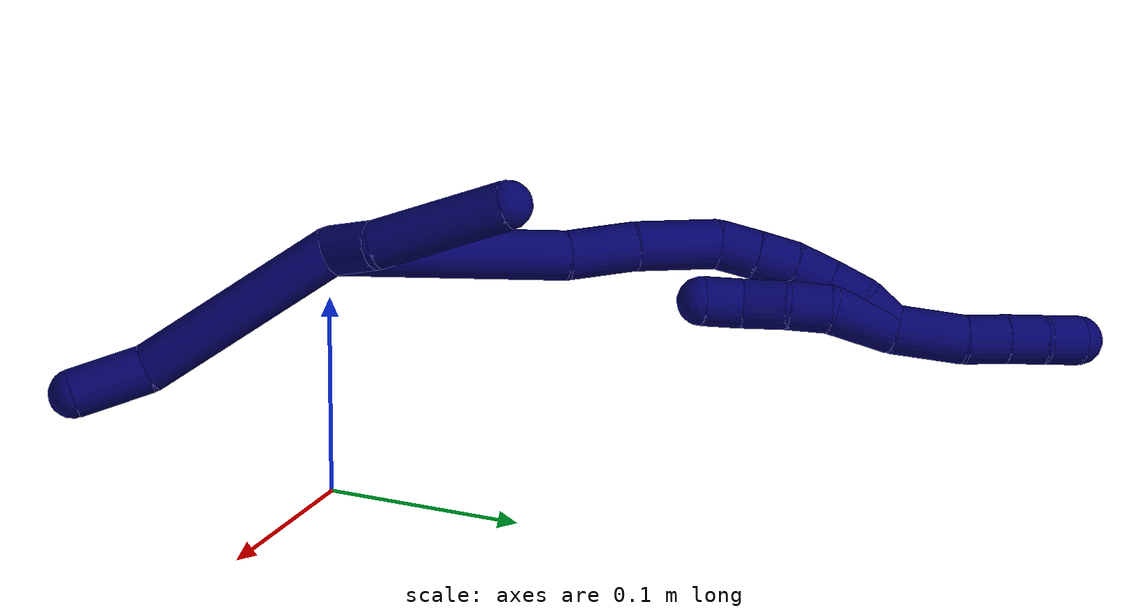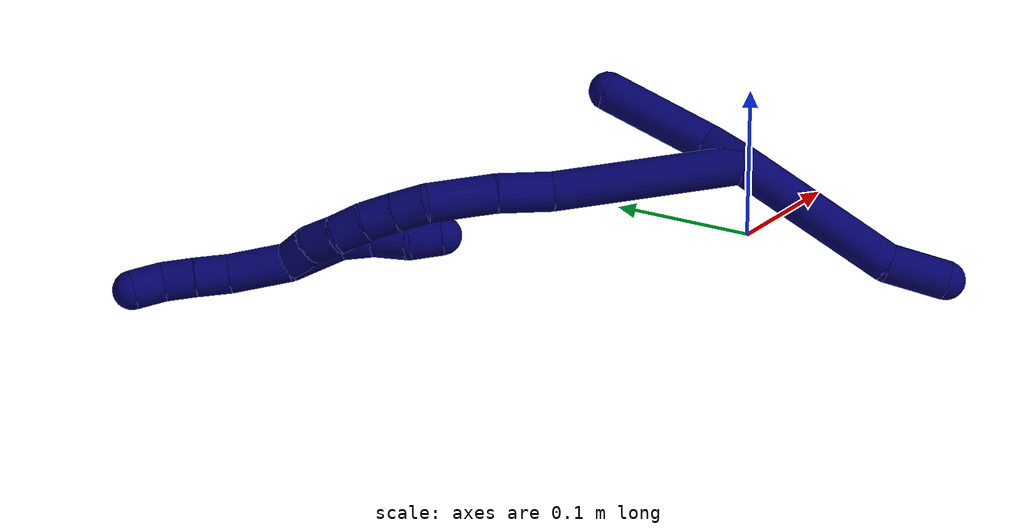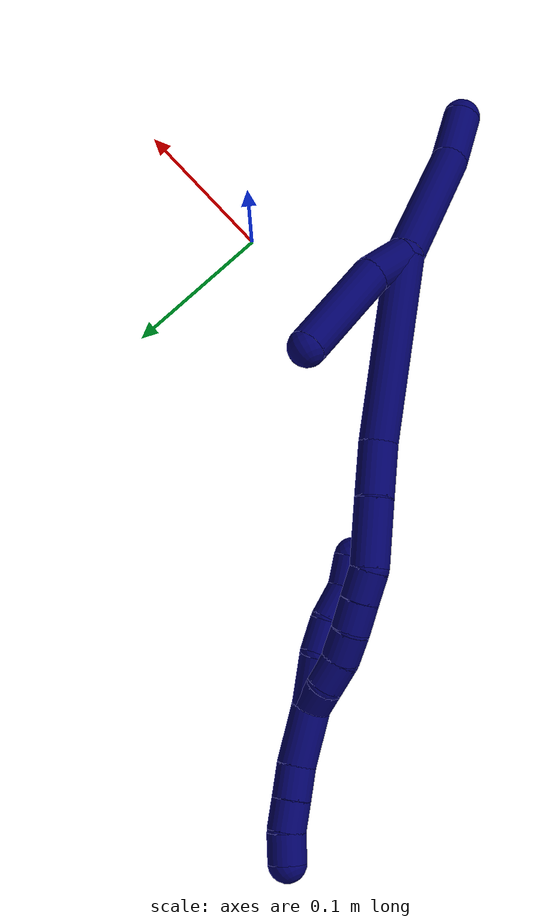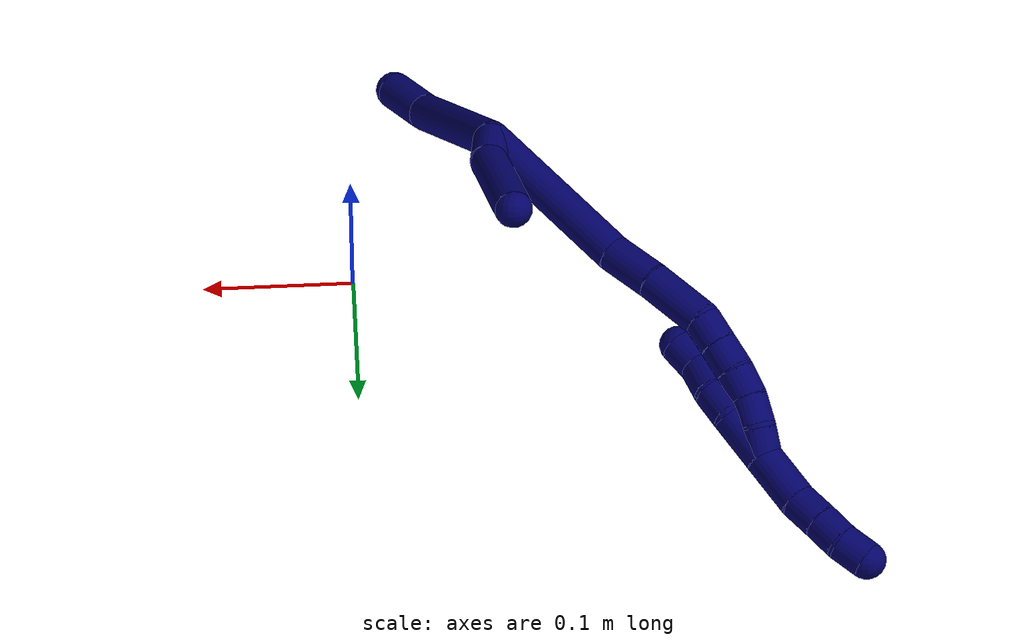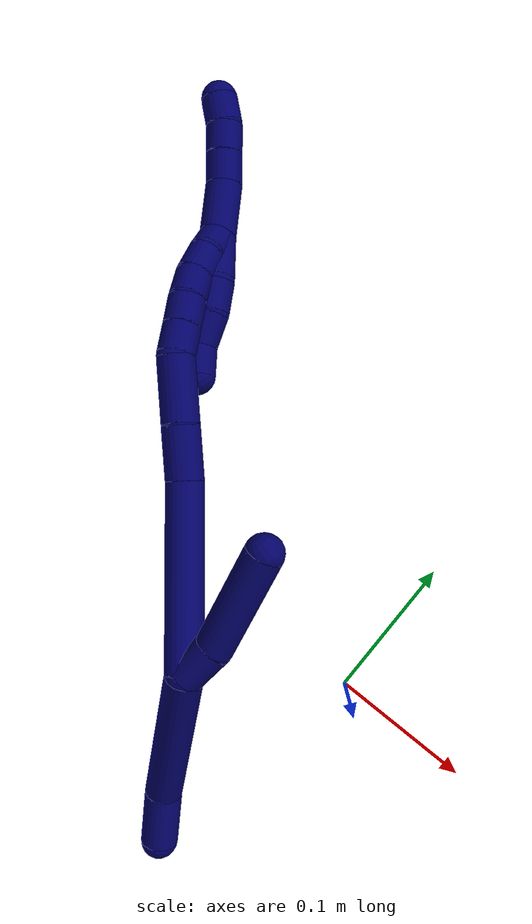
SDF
<sdf version="1.7">
 <world name="default">
  <model name="7">
   <static>0</static>
   <link name="7">
    <collision name="collision-cylinder-e_1_2_8">
     <pose>-0.025778 -0.034031 -0.035325 2.37486 -0.483871 -1.09816</pose>
     <geometry><cylinder><radius>0.0125</radius><length>0.110824</length></cylinder></geometry>
     <surface>
      <friction><ode><mu>1.16</mu><mu2>1.16</mu2><slip1>0</slip1><slip2>0</slip2></ode></friction>
      <contact><ode><kp>1e+06</kp><kd>1</kd><max_vel>0</max_vel><min_depth>0.001</min_depth></ode></contact>
     </surface>
    </collision>
    <visual name="visual-cylinder-e_1_2_8">
     <pose>-0.025778 -0.034031 -0.035325 2.37486 -0.483871 -1.09816</pose>
     <geometry><cylinder><radius>0.0125</radius><length>0.110824</length></cylinder></geometry>
     <material><ambient>0.003922 0 0.403922 1</ambient></material>
    </visual>
    <collision name="collision-cylinder-e_2_8_6">
     <pose>-0.055166 -0.080378 -0.085448 2.44743 -0.185325 -0.50293</pose>
     <geometry><cylinder><radius>0.0125</radius><length>0.039176</length></cylinder></geometry>
     <surface>
      <friction><ode><mu>1.16</mu><mu2>1.16</mu2><slip1>0</slip1><slip2>0</slip2></ode></friction>
      <contact><ode><kp>1e+06</kp><kd>1</kd><max_vel>0</max_vel><min_depth>0.001</min_depth></ode></contact>
     </surface>
    </collision>
    <visual name="visual-cylinder-e_2_8_6">
     <pose>-0.055166 -0.080378 -0.085448 2.44743 -0.185325 -0.50293</pose>
     <geometry><cylinder><radius>0.0125</radius><length>0.039176</length></cylinder></geometry>
     <material><ambient>0.003922 0 0.403922 1</ambient></material>
    </visual>
    <collision name="collision-cylinder-e_1_2_9">
     <pose>0.003371 0.013073 0.002983 -1.34647 0.246323 -0.196812</pose>
     <geometry><cylinder><radius>0.0125</radius><length>0.027652</length></cylinder></geometry>
     <surface>
      <friction><ode><mu>1.16</mu><mu2>1.16</mu2><slip1>0</slip1><slip2>0</slip2></ode></friction>
      <contact><ode><kp>1e+06</kp><kd>1</kd><max_vel>0</max_vel><min_depth>0.001</min_depth></ode></contact>
     </surface>
    </collision>
    <visual name="visual-cylinder-e_1_2_9">
     <pose>0.003371 0.013073 0.002983 -1.34647 0.246323 -0.196812</pose>
     <geometry><cylinder><radius>0.0125</radius><length>0.027652</length></cylinder></geometry>
     <material><ambient>0.003922 0 0.403922 1</ambient></material>
    </visual>
    <collision name="collision-cylinder-e_2_9_5">
     <pose>0.01726 0.056057 0.023379 -1.04361 0.294997 -0.170439</pose>
     <geometry><cylinder><radius>0.0125</radius><length>0.072348</length></cylinder></geometry>
     <surface>
      <friction><ode><mu>1.16</mu><mu2>1.16</mu2><slip1>0</slip1><slip2>0</slip2></ode></friction>
      <contact><ode><kp>1e+06</kp><kd>1</kd><max_vel>0</max_vel><min_depth>0.001</min_depth></ode></contact>
     </surface>
    </collision>
    <visual name="visual-cylinder-e_2_9_5">
     <pose>0.01726 0.056057 0.023379 -1.04361 0.294997 -0.170439</pose>
     <geometry><cylinder><radius>0.0125</radius><length>0.072348</length></cylinder></geometry>
     <material><ambient>0.003922 0 0.403922 1</ambient></material>
    </visual>
    <collision name="collision-cylinder-e_1_2_10">
     <pose>-0.013735 0.032986 0.048376 -0.598454 -0.230413 0.071366</pose>
     <geometry><cylinder><radius>0.0125</radius><length>0.120282</length></cylinder></geometry>
     <surface>
      <friction><ode><mu>1.16</mu><mu2>1.16</mu2><slip1>0</slip1><slip2>0</slip2></ode></friction>
      <contact><ode><kp>1e+06</kp><kd>1</kd><max_vel>0</max_vel><min_depth>0.001</min_depth></ode></contact>
     </surface>
    </collision>
    <visual name="visual-cylinder-e_1_2_10">
     <pose>-0.013735 0.032986 0.048376 -0.598454 -0.230413 0.071366</pose>
     <geometry><cylinder><radius>0.0125</radius><length>0.120282</length></cylinder></geometry>
     <material><ambient>0.003922 0 0.403922 1</ambient></material>
    </visual>
    <collision name="collision-cylinder-e_2_10_11">
     <pose>-0.029212 0.074867 0.112053 -0.526562 -0.09811 0.026464</pose>
     <geometry><cylinder><radius>0.0125</radius><length>0.035568</length></cylinder></geometry>
     <surface>
      <friction><ode><mu>1.16</mu><mu2>1.16</mu2><slip1>0</slip1><slip2>0</slip2></ode></friction>
      <contact><ode><kp>1e+06</kp><kd>1</kd><max_vel>0</max_vel><min_depth>0.001</min_depth></ode></contact>
     </surface>
    </collision>
    <visual name="visual-cylinder-e_2_10_11">
     <pose>-0.029212 0.074867 0.112053 -0.526562 -0.09811 0.026464</pose>
     <geometry><cylinder><radius>0.0125</radius><length>0.035568</length></cylinder></geometry>
     <material><ambient>0.003922 0 0.403922 1</ambient></material>
    </visual>
    <collision name="collision-cylinder-e_3_11_12">
     <pose>-0.035437 0.094447 0.14584 -0.5241 -0.206943 0.05569</pose>
     <geometry><cylinder><radius>0.0125</radius><length>0.043635</length></cylinder></geometry>
     <surface>
      <friction><ode><mu>1.16</mu><mu2>1.16</mu2><slip1>0</slip1><slip2>0</slip2></ode></friction>
      <contact><ode><kp>1e+06</kp><kd>1</kd><max_vel>0</max_vel><min_depth>0.001</min_depth></ode></contact>
     </surface>
    </collision>
    <visual name="visual-cylinder-e_3_11_12">
     <pose>-0.035437 0.094447 0.14584 -0.5241 -0.206943 0.05569</pose>
     <geometry><cylinder><radius>0.0125</radius><length>0.043635</length></cylinder></geometry>
     <material><ambient>0.003922 0 0.403922 1</ambient></material>
    </visual>
    <collision name="collision-cylinder-e_4_12_13">
     <pose>-0.044057 0.11177 0.170901 -0.790168 -0.416827 0.175927</pose>
     <geometry><cylinder><radius>0.0125</radius><length>0.020437</length></cylinder></geometry>
     <surface>
      <friction><ode><mu>1.16</mu><mu2>1.16</mu2><slip1>0</slip1><slip2>0</slip2></ode></friction>
      <contact><ode><kp>1e+06</kp><kd>1</kd><max_vel>0</max_vel><min_depth>0.001</min_depth></ode></contact>
     </surface>
    </collision>
    <visual name="visual-cylinder-e_4_12_13">
     <pose>-0.044057 0.11177 0.170901 -0.790168 -0.416827 0.175927</pose>
     <geometry><cylinder><radius>0.0125</radius><length>0.020437</length></cylinder></geometry>
     <material><ambient>0.003922 0 0.403922 1</ambient></material>
    </visual>
    <collision name="collision-cylinder-e_5_13_14">
     <pose>-0.052488 0.124748 0.18392 -0.77731 -0.443479 0.184112</pose>
     <geometry><cylinder><radius>0.0125</radius><length>0.020015</length></cylinder></geometry>
     <surface>
      <friction><ode><mu>1.16</mu><mu2>1.16</mu2><slip1>0</slip1><slip2>0</slip2></ode></friction>
      <contact><ode><kp>1e+06</kp><kd>1</kd><max_vel>0</max_vel><min_depth>0.001</min_depth></ode></contact>
     </surface>
    </collision>
    <visual name="visual-cylinder-e_5_13_14">
     <pose>-0.052488 0.124748 0.18392 -0.77731 -0.443479 0.184112</pose>
     <geometry><cylinder><radius>0.0125</radius><length>0.020015</length></cylinder></geometry>
     <material><ambient>0.003922 0 0.403922 1</ambient></material>
    </visual>
    <collision name="collision-cylinder-e_6_14_15">
     <pose>-0.062322 0.137409 0.195818 -0.858707 -0.585824 0.274421</pose>
     <geometry><cylinder><radius>0.0125</radius><length>0.020041</length></cylinder></geometry>
     <surface>
      <friction><ode><mu>1.16</mu><mu2>1.16</mu2><slip1>0</slip1><slip2>0</slip2></ode></friction>
      <contact><ode><kp>1e+06</kp><kd>1</kd><max_vel>0</max_vel><min_depth>0.001</min_depth></ode></contact>
     </surface>
    </collision>
    <visual name="visual-cylinder-e_6_14_15">
     <pose>-0.062322 0.137409 0.195818 -0.858707 -0.585824 0.274421</pose>
     <geometry><cylinder><radius>0.0125</radius><length>0.020041</length></cylinder></geometry>
     <material><ambient>0.003922 0 0.403922 1</ambient></material>
    </visual>
    <collision name="collision-cylinder-e_7_15_16">
     <pose>-0.073051 0.151258 0.205333 -1.07643 -0.54534 0.330836</pose>
     <geometry><cylinder><radius>0.0125</radius><length>0.020009</length></cylinder></geometry>
     <surface>
      <friction><ode><mu>1.16</mu><mu2>1.16</mu2><slip1>0</slip1><slip2>0</slip2></ode></friction>
      <contact><ode><kp>1e+06</kp><kd>1</kd><max_vel>0</max_vel><min_depth>0.001</min_depth></ode></contact>
     </surface>
    </collision>
    <visual name="visual-cylinder-e_7_15_16">
     <pose>-0.073051 0.151258 0.205333 -1.07643 -0.54534 0.330836</pose>
     <geometry><cylinder><radius>0.0125</radius><length>0.020009</length></cylinder></geometry>
     <material><ambient>0.003922 0 0.403922 1</ambient></material>
    </visual>
    <collision name="collision-cylinder-e_8_16_1">
     <pose>-0.085534 0.165036 0.2122 -1.14834 -0.816692 0.545788</pose>
     <geometry><cylinder><radius>0.0125</radius><length>0.020014</length></cylinder></geometry>
     <surface>
      <friction><ode><mu>1.16</mu><mu2>1.16</mu2><slip1>0</slip1><slip2>0</slip2></ode></friction>
      <contact><ode><kp>1e+06</kp><kd>1</kd><max_vel>0</max_vel><min_depth>0.001</min_depth></ode></contact>
     </surface>
    </collision>
    <visual name="visual-cylinder-e_8_16_1">
     <pose>-0.085534 0.165036 0.2122 -1.14834 -0.816692 0.545788</pose>
     <geometry><cylinder><radius>0.0125</radius><length>0.020014</length></cylinder></geometry>
     <material><ambient>0.003922 0 0.403922 1</ambient></material>
    </visual>
    <collision name="collision-cylinder-e_1_1_17">
     <pose>-0.084252 0.162317 0.202827 2.50699 0.515735 1.35327</pose>
     <geometry><cylinder><radius>0.0125</radius><length>0.034778</length></cylinder></geometry>
     <surface>
      <friction><ode><mu>1.16</mu><mu2>1.16</mu2><slip1>0</slip1><slip2>0</slip2></ode></friction>
      <contact><ode><kp>1e+06</kp><kd>1</kd><max_vel>0</max_vel><min_depth>0.001</min_depth></ode></contact>
     </surface>
    </collision>
    <visual name="visual-cylinder-e_1_1_17">
     <pose>-0.084252 0.162317 0.202827 2.50699 0.515735 1.35327</pose>
     <geometry><cylinder><radius>0.0125</radius><length>0.034778</length></cylinder></geometry>
     <material><ambient>0.003922 0 0.403922 1</ambient></material>
    </visual>
    <collision name="collision-cylinder-e_2_17_18">
     <pose>-0.073232 0.146199 0.183246 2.37332 0.23327 0.564258</pose>
     <geometry><cylinder><radius>0.0125</radius><length>0.02115</length></cylinder></geometry>
     <surface>
      <friction><ode><mu>1.16</mu><mu2>1.16</mu2><slip1>0</slip1><slip2>0</slip2></ode></friction>
      <contact><ode><kp>1e+06</kp><kd>1</kd><max_vel>0</max_vel><min_depth>0.001</min_depth></ode></contact>
     </surface>
    </collision>
    <visual name="visual-cylinder-e_2_17_18">
     <pose>-0.073232 0.146199 0.183246 2.37332 0.23327 0.564258</pose>
     <geometry><cylinder><radius>0.0125</radius><length>0.02115</length></cylinder></geometry>
     <material><ambient>0.003922 0 0.403922 1</ambient></material>
    </visual>
    <collision name="collision-cylinder-e_3_18_19">
     <pose>-0.069732 0.129643 0.169066 2.19541 0.090772 0.176995</pose>
     <geometry><cylinder><radius>0.0125</radius><length>0.023286</length></cylinder></geometry>
     <surface>
      <friction><ode><mu>1.16</mu><mu2>1.16</mu2><slip1>0</slip1><slip2>0</slip2></ode></friction>
      <contact><ode><kp>1e+06</kp><kd>1</kd><max_vel>0</max_vel><min_depth>0.001</min_depth></ode></contact>
     </surface>
    </collision>
    <visual name="visual-cylinder-e_3_18_19">
     <pose>-0.069732 0.129643 0.169066 2.19541 0.090772 0.176995</pose>
     <geometry><cylinder><radius>0.0125</radius><length>0.023286</length></cylinder></geometry>
     <material><ambient>0.003922 0 0.403922 1</ambient></material>
    </visual>
    <collision name="collision-cylinder-e_4_19_4">
     <pose>-0.066097 0.114057 0.154338 2.48063 0.250808 0.704308</pose>
     <geometry><cylinder><radius>0.0125</radius><length>0.020785</length></cylinder></geometry>
     <surface>
      <friction><ode><mu>1.16</mu><mu2>1.16</mu2><slip1>0</slip1><slip2>0</slip2></ode></friction>
      <contact><ode><kp>1e+06</kp><kd>1</kd><max_vel>0</max_vel><min_depth>0.001</min_depth></ode></contact>
     </surface>
    </collision>
    <visual name="visual-cylinder-e_4_19_4">
     <pose>-0.066097 0.114057 0.154338 2.48063 0.250808 0.704308</pose>
     <geometry><cylinder><radius>0.0125</radius><length>0.020785</length></cylinder></geometry>
     <material><ambient>0.003922 0 0.403922 1</ambient></material>
    </visual>
    <collision name="collision-cylinder-e_1_1_20">
     <pose>-0.098748 0.183185 0.228628 -0.718136 -0.316326 0.119587</pose>
     <geometry><cylinder><radius>0.0125</radius><length>0.038061</length></cylinder></geometry>
     <surface>
      <friction><ode><mu>1.16</mu><mu2>1.16</mu2><slip1>0</slip1><slip2>0</slip2></ode></friction>
      <contact><ode><kp>1e+06</kp><kd>1</kd><max_vel>0</max_vel><min_depth>0.001</min_depth></ode></contact>
     </surface>
    </collision>
    <visual name="visual-cylinder-e_1_1_20">
     <pose>-0.098748 0.183185 0.228628 -0.718136 -0.316326 0.119587</pose>
     <geometry><cylinder><radius>0.0125</radius><length>0.038061</length></cylinder></geometry>
     <material><ambient>0.003922 0 0.403922 1</ambient></material>
    </visual>
    <collision name="collision-cylinder-e_2_20_21">
     <pose>-0.106761 0.201157 0.251094 -0.601419 -0.192655 0.059913</pose>
     <geometry><cylinder><radius>0.0125</radius><length>0.021863</length></cylinder></geometry>
     <surface>
      <friction><ode><mu>1.16</mu><mu2>1.16</mu2><slip1>0</slip1><slip2>0</slip2></ode></friction>
      <contact><ode><kp>1e+06</kp><kd>1</kd><max_vel>0</max_vel><min_depth>0.001</min_depth></ode></contact>
     </surface>
    </collision>
    <visual name="visual-cylinder-e_2_20_21">
     <pose>-0.106761 0.201157 0.251094 -0.601419 -0.192655 0.059913</pose>
     <geometry><cylinder><radius>0.0125</radius><length>0.021863</length></cylinder></geometry>
     <material><ambient>0.003922 0 0.403922 1</ambient></material>
    </visual>
    <collision name="collision-cylinder-e_3_21_22">
     <pose>-0.111115 0.212858 0.267937 -0.613578 -0.227245 0.072269</pose>
     <geometry><cylinder><radius>0.0125</radius><length>0.020075</length></cylinder></geometry>
     <surface>
      <friction><ode><mu>1.16</mu><mu2>1.16</mu2><slip1>0</slip1><slip2>0</slip2></ode></friction>
      <contact><ode><kp>1e+06</kp><kd>1</kd><max_vel>0</max_vel><min_depth>0.001</min_depth></ode></contact>
     </surface>
    </collision>
    <visual name="visual-cylinder-e_3_21_22">
     <pose>-0.111115 0.212858 0.267937 -0.613578 -0.227245 0.072269</pose>
     <geometry><cylinder><radius>0.0125</radius><length>0.020075</length></cylinder></geometry>
     <material><ambient>0.003922 0 0.403922 1</ambient></material>
    </visual>
    <collision name="collision-cylinder-e_4_22_3">
     <pose>-0.116295 0.222378 0.284671 -0.418716 -0.296149 0.063366</pose>
     <geometry><cylinder><radius>0.0125</radius><length>0.020002</length></cylinder></geometry>
     <surface>
      <friction><ode><mu>1.16</mu><mu2>1.16</mu2><slip1>0</slip1><slip2>0</slip2></ode></friction>
      <contact><ode><kp>1e+06</kp><kd>1</kd><max_vel>0</max_vel><min_depth>0.001</min_depth></ode></contact>
     </surface>
    </collision>
    <visual name="visual-cylinder-e_4_22_3">
     <pose>-0.116295 0.222378 0.284671 -0.418716 -0.296149 0.063366</pose>
     <geometry><cylinder><radius>0.0125</radius><length>0.020002</length></cylinder></geometry>
     <material><ambient>0.003922 0 0.403922 1</ambient></material>
    </visual>
    <collision name="collision-sphere-3">
     <pose>-0.119214 0.226267 0.29341 0 -0 0</pose>
     <geometry><sphere><radius>0.0125</radius></sphere></geometry>
     <surface>
      <friction><ode><mu>1.16</mu><mu2>1.16</mu2><slip1>0</slip1><slip2>0</slip2></ode></friction>
      <contact><ode><kp>1e+06</kp><kd>1</kd><max_vel>0</max_vel><min_depth>0.001</min_depth></ode></contact>
     </surface>
    </collision>
    <visual name="visual-sphere-3">
     <pose>-0.119214 0.226267 0.29341 0 -0 0</pose>
     <geometry><sphere><radius>0.0125</radius></sphere></geometry>
     <material><ambient>0.003922 0 0.403922 1</ambient></material>
    </visual>
    <collision name="collision-sphere-22">
     <pose>-0.113377 0.218489 0.275932 0 -0 0</pose>
     <geometry><sphere><radius>0.0125</radius></sphere></geometry>
     <surface>
      <friction><ode><mu>1.16</mu><mu2>1.16</mu2><slip1>0</slip1><slip2>0</slip2></ode></friction>
      <contact><ode><kp>1e+06</kp><kd>1</kd><max_vel>0</max_vel><min_depth>0.001</min_depth></ode></contact>
     </surface>
    </collision>
    <visual name="visual-sphere-22">
     <pose>-0.113377 0.218489 0.275932 0 -0 0</pose>
     <geometry><sphere><radius>0.0125</radius></sphere></geometry>
     <material><ambient>0.003922 0 0.403922 1</ambient></material>
    </visual>
    <collision name="collision-sphere-21">
     <pose>-0.108854 0.207227 0.259941 0 -0 0</pose>
     <geometry><sphere><radius>0.0125</radius></sphere></geometry>
     <surface>
      <friction><ode><mu>1.16</mu><mu2>1.16</mu2><slip1>0</slip1><slip2>0</slip2></ode></friction>
      <contact><ode><kp>1e+06</kp><kd>1</kd><max_vel>0</max_vel><min_depth>0.001</min_depth></ode></contact>
     </surface>
    </collision>
    <visual name="visual-sphere-21">
     <pose>-0.108854 0.207227 0.259941 0 -0 0</pose>
     <geometry><sphere><radius>0.0125</radius></sphere></geometry>
     <material><ambient>0.003922 0 0.403922 1</ambient></material>
    </visual>
    <collision name="collision-sphere-20">
     <pose>-0.104668 0.195086 0.242248 0 -0 0</pose>
     <geometry><sphere><radius>0.0125</radius></sphere></geometry>
     <surface>
      <friction><ode><mu>1.16</mu><mu2>1.16</mu2><slip1>0</slip1><slip2>0</slip2></ode></friction>
      <contact><ode><kp>1e+06</kp><kd>1</kd><max_vel>0</max_vel><min_depth>0.001</min_depth></ode></contact>
     </surface>
    </collision>
    <visual name="visual-sphere-20">
     <pose>-0.104668 0.195086 0.242248 0 -0 0</pose>
     <geometry><sphere><radius>0.0125</radius></sphere></geometry>
     <material><ambient>0.003922 0 0.403922 1</ambient></material>
    </visual>
    <collision name="collision-sphere-4">
     <pose>-0.063518 0.107877 0.146391 0 -0 0</pose>
     <geometry><sphere><radius>0.0125</radius></sphere></geometry>
     <surface>
      <friction><ode><mu>1.16</mu><mu2>1.16</mu2><slip1>0</slip1><slip2>0</slip2></ode></friction>
      <contact><ode><kp>1e+06</kp><kd>1</kd><max_vel>0</max_vel><min_depth>0.001</min_depth></ode></contact>
     </surface>
    </collision>
    <visual name="visual-sphere-4">
     <pose>-0.063518 0.107877 0.146391 0 -0 0</pose>
     <geometry><sphere><radius>0.0125</radius></sphere></geometry>
     <material><ambient>0.003922 0 0.403922 1</ambient></material>
    </visual>
    <collision name="collision-sphere-10">
     <pose>-0.02747 0.065972 0.096752 0 -0 0</pose>
     <geometry><sphere><radius>0.0125</radius></sphere></geometry>
     <surface>
      <friction><ode><mu>1.16</mu><mu2>1.16</mu2><slip1>0</slip1><slip2>0</slip2></ode></friction>
      <contact><ode><kp>1e+06</kp><kd>1</kd><max_vel>0</max_vel><min_depth>0.001</min_depth></ode></contact>
     </surface>
    </collision>
    <visual name="visual-sphere-10">
     <pose>-0.02747 0.065972 0.096752 0 -0 0</pose>
     <geometry><sphere><radius>0.0125</radius></sphere></geometry>
     <material><ambient>0.003922 0 0.403922 1</ambient></material>
    </visual>
    <collision name="collision-sphere-5">
     <pose>0.027777 0.08597 0.040792 0 -0 0</pose>
     <geometry><sphere><radius>0.0125</radius></sphere></geometry>
     <surface>
      <friction><ode><mu>1.16</mu><mu2>1.16</mu2><slip1>0</slip1><slip2>0</slip2></ode></friction>
      <contact><ode><kp>1e+06</kp><kd>1</kd><max_vel>0</max_vel><min_depth>0.001</min_depth></ode></contact>
     </surface>
    </collision>
    <visual name="visual-sphere-5">
     <pose>0.027777 0.08597 0.040792 0 -0 0</pose>
     <geometry><sphere><radius>0.0125</radius></sphere></geometry>
     <material><ambient>0.003922 0 0.403922 1</ambient></material>
    </visual>
    <collision name="collision-sphere-6">
     <pose>-0.058775 -0.092695 -0.100245 0 -0 0</pose>
     <geometry><sphere><radius>0.0125</radius></sphere></geometry>
     <surface>
      <friction><ode><mu>1.16</mu><mu2>1.16</mu2><slip1>0</slip1><slip2>0</slip2></ode></friction>
      <contact><ode><kp>1e+06</kp><kd>1</kd><max_vel>0</max_vel><min_depth>0.001</min_depth></ode></contact>
     </surface>
    </collision>
    <visual name="visual-sphere-6">
     <pose>-0.058775 -0.092695 -0.100245 0 -0 0</pose>
     <geometry><sphere><radius>0.0125</radius></sphere></geometry>
     <material><ambient>0.003922 0 0.403922 1</ambient></material>
    </visual>
    <collision name="collision-sphere-9">
     <pose>0.006743 0.026145 0.005965 0 -0 0</pose>
     <geometry><sphere><radius>0.0125</radius></sphere></geometry>
     <surface>
      <friction><ode><mu>1.16</mu><mu2>1.16</mu2><slip1>0</slip1><slip2>0</slip2></ode></friction>
      <contact><ode><kp>1e+06</kp><kd>1</kd><max_vel>0</max_vel><min_depth>0.001</min_depth></ode></contact>
     </surface>
    </collision>
    <visual name="visual-sphere-9">
     <pose>0.006743 0.026145 0.005965 0 -0 0</pose>
     <geometry><sphere><radius>0.0125</radius></sphere></geometry>
     <material><ambient>0.003922 0 0.403922 1</ambient></material>
    </visual>
    <collision name="collision-sphere-2">
     <geometry><sphere><radius>0.0125</radius></sphere></geometry>
     <surface>
      <friction><ode><mu>1.16</mu><mu2>1.16</mu2><slip1>0</slip1><slip2>0</slip2></ode></friction>
      <contact><ode><kp>1e+06</kp><kd>1</kd><max_vel>0</max_vel><min_depth>0.001</min_depth></ode></contact>
     </surface>
    </collision>
    <visual name="visual-sphere-2">
     <geometry><sphere><radius>0.0125</radius></sphere></geometry>
     <material><ambient>0.003922 0 0.403922 1</ambient></material>
    </visual>
    <collision name="collision-sphere-19">
     <pose>-0.068677 0.120237 0.162286 0 -0 0</pose>
     <geometry><sphere><radius>0.0125</radius></sphere></geometry>
     <surface>
      <friction><ode><mu>1.16</mu><mu2>1.16</mu2><slip1>0</slip1><slip2>0</slip2></ode></friction>
      <contact><ode><kp>1e+06</kp><kd>1</kd><max_vel>0</max_vel><min_depth>0.001</min_depth></ode></contact>
     </surface>
    </collision>
    <visual name="visual-sphere-19">
     <pose>-0.068677 0.120237 0.162286 0 -0 0</pose>
     <geometry><sphere><radius>0.0125</radius></sphere></geometry>
     <material><ambient>0.003922 0 0.403922 1</ambient></material>
    </visual>
    <collision name="collision-sphere-8">
     <pose>-0.051556 -0.068062 -0.070651 0 -0 0</pose>
     <geometry><sphere><radius>0.0125</radius></sphere></geometry>
     <surface>
      <friction><ode><mu>1.16</mu><mu2>1.16</mu2><slip1>0</slip1><slip2>0</slip2></ode></friction>
      <contact><ode><kp>1e+06</kp><kd>1</kd><max_vel>0</max_vel><min_depth>0.001</min_depth></ode></contact>
     </surface>
    </collision>
    <visual name="visual-sphere-8">
     <pose>-0.051556 -0.068062 -0.070651 0 -0 0</pose>
     <geometry><sphere><radius>0.0125</radius></sphere></geometry>
     <material><ambient>0.003922 0 0.403922 1</ambient></material>
    </visual>
    <collision name="collision-sphere-11">
     <pose>-0.030954 0.083761 0.127354 0 -0 0</pose>
     <geometry><sphere><radius>0.0125</radius></sphere></geometry>
     <surface>
      <friction><ode><mu>1.16</mu><mu2>1.16</mu2><slip1>0</slip1><slip2>0</slip2></ode></friction>
      <contact><ode><kp>1e+06</kp><kd>1</kd><max_vel>0</max_vel><min_depth>0.001</min_depth></ode></contact>
     </surface>
    </collision>
    <visual name="visual-sphere-11">
     <pose>-0.030954 0.083761 0.127354 0 -0 0</pose>
     <geometry><sphere><radius>0.0125</radius></sphere></geometry>
     <material><ambient>0.003922 0 0.403922 1</ambient></material>
    </visual>
    <collision name="collision-sphere-12">
     <pose>-0.03992 0.105132 0.164326 0 -0 0</pose>
     <geometry><sphere><radius>0.0125</radius></sphere></geometry>
     <surface>
      <friction><ode><mu>1.16</mu><mu2>1.16</mu2><slip1>0</slip1><slip2>0</slip2></ode></friction>
      <contact><ode><kp>1e+06</kp><kd>1</kd><max_vel>0</max_vel><min_depth>0.001</min_depth></ode></contact>
     </surface>
    </collision>
    <visual name="visual-sphere-12">
     <pose>-0.03992 0.105132 0.164326 0 -0 0</pose>
     <geometry><sphere><radius>0.0125</radius></sphere></geometry>
     <material><ambient>0.003922 0 0.403922 1</ambient></material>
    </visual>
    <collision name="collision-sphere-13">
     <pose>-0.048194 0.118408 0.177476 0 -0 0</pose>
     <geometry><sphere><radius>0.0125</radius></sphere></geometry>
     <surface>
      <friction><ode><mu>1.16</mu><mu2>1.16</mu2><slip1>0</slip1><slip2>0</slip2></ode></friction>
      <contact><ode><kp>1e+06</kp><kd>1</kd><max_vel>0</max_vel><min_depth>0.001</min_depth></ode></contact>
     </surface>
    </collision>
    <visual name="visual-sphere-13">
     <pose>-0.048194 0.118408 0.177476 0 -0 0</pose>
     <geometry><sphere><radius>0.0125</radius></sphere></geometry>
     <material><ambient>0.003922 0 0.403922 1</ambient></material>
    </visual>
    <collision name="collision-sphere-14">
     <pose>-0.056781 0.131088 0.190363 0 -0 0</pose>
     <geometry><sphere><radius>0.0125</radius></sphere></geometry>
     <surface>
      <friction><ode><mu>1.16</mu><mu2>1.16</mu2><slip1>0</slip1><slip2>0</slip2></ode></friction>
      <contact><ode><kp>1e+06</kp><kd>1</kd><max_vel>0</max_vel><min_depth>0.001</min_depth></ode></contact>
     </surface>
    </collision>
    <visual name="visual-sphere-14">
     <pose>-0.056781 0.131088 0.190363 0 -0 0</pose>
     <geometry><sphere><radius>0.0125</radius></sphere></geometry>
     <material><ambient>0.003922 0 0.403922 1</ambient></material>
    </visual>
    <collision name="collision-sphere-15">
     <pose>-0.067862 0.143729 0.201274 0 -0 0</pose>
     <geometry><sphere><radius>0.0125</radius></sphere></geometry>
     <surface>
      <friction><ode><mu>1.16</mu><mu2>1.16</mu2><slip1>0</slip1><slip2>0</slip2></ode></friction>
      <contact><ode><kp>1e+06</kp><kd>1</kd><max_vel>0</max_vel><min_depth>0.001</min_depth></ode></contact>
     </surface>
    </collision>
    <visual name="visual-sphere-15">
     <pose>-0.067862 0.143729 0.201274 0 -0 0</pose>
     <geometry><sphere><radius>0.0125</radius></sphere></geometry>
     <material><ambient>0.003922 0 0.403922 1</ambient></material>
    </visual>
    <collision name="collision-sphere-16">
     <pose>-0.078241 0.158788 0.209391 0 -0 0</pose>
     <geometry><sphere><radius>0.0125</radius></sphere></geometry>
     <surface>
      <friction><ode><mu>1.16</mu><mu2>1.16</mu2><slip1>0</slip1><slip2>0</slip2></ode></friction>
      <contact><ode><kp>1e+06</kp><kd>1</kd><max_vel>0</max_vel><min_depth>0.001</min_depth></ode></contact>
     </surface>
    </collision>
    <visual name="visual-sphere-16">
     <pose>-0.078241 0.158788 0.209391 0 -0 0</pose>
     <geometry><sphere><radius>0.0125</radius></sphere></geometry>
     <material><ambient>0.003922 0 0.403922 1</ambient></material>
    </visual>
    <collision name="collision-sphere-1">
     <pose>-0.092828 0.171285 0.215009 0 -0 0</pose>
     <geometry><sphere><radius>0.0125</radius></sphere></geometry>
     <surface>
      <friction><ode><mu>1.16</mu><mu2>1.16</mu2><slip1>0</slip1><slip2>0</slip2></ode></friction>
      <contact><ode><kp>1e+06</kp><kd>1</kd><max_vel>0</max_vel><min_depth>0.001</min_depth></ode></contact>
     </surface>
    </collision>
    <visual name="visual-sphere-1">
     <pose>-0.092828 0.171285 0.215009 0 -0 0</pose>
     <geometry><sphere><radius>0.0125</radius></sphere></geometry>
     <material><ambient>0.003922 0 0.403922 1</ambient></material>
    </visual>
    <collision name="collision-sphere-18">
     <pose>-0.070787 0.139049 0.175847 0 -0 0</pose>
     <geometry><sphere><radius>0.0125</radius></sphere></geometry>
     <surface>
      <friction><ode><mu>1.16</mu><mu2>1.16</mu2><slip1>0</slip1><slip2>0</slip2></ode></friction>
      <contact><ode><kp>1e+06</kp><kd>1</kd><max_vel>0</max_vel><min_depth>0.001</min_depth></ode></contact>
     </surface>
    </collision>
    <visual name="visual-sphere-18">
     <pose>-0.070787 0.139049 0.175847 0 -0 0</pose>
     <geometry><sphere><radius>0.0125</radius></sphere></geometry>
     <material><ambient>0.003922 0 0.403922 1</ambient></material>
    </visual>
    <collision name="collision-sphere-17">
     <pose>-0.075677 0.153348 0.190645 0 -0 0</pose>
     <geometry><sphere><radius>0.0125</radius></sphere></geometry>
     <surface>
      <friction><ode><mu>1.16</mu><mu2>1.16</mu2><slip1>0</slip1><slip2>0</slip2></ode></friction>
      <contact><ode><kp>1e+06</kp><kd>1</kd><max_vel>0</max_vel><min_depth>0.001</min_depth></ode></contact>
     </surface>
    </collision>
    <visual name="visual-sphere-17">
     <pose>-0.075677 0.153348 0.190645 0 -0 0</pose>
     <geometry><sphere><radius>0.0125</radius></sphere></geometry>
     <material><ambient>0.003922 0 0.403922 1</ambient></material>
    </visual>
    <inertial>
     <pose>-0.043217 0.075108 0.097962 0 -0 0</pose>
     <mass>0.75</mass>
     <inertia><ixx>0.000177</ixx><ixy>0</ixy><ixz>0</ixz><iyy>8.9e-05</iyy><iyz>0</iyz><izz>5e-05</izz></inertia>
    </inertial>
   </link>
   <pose>-0.094613 -0.047241 0.085981 0.147387 -1.43577 -0.445353</pose>
  </model>
 </world>
</sdf>
